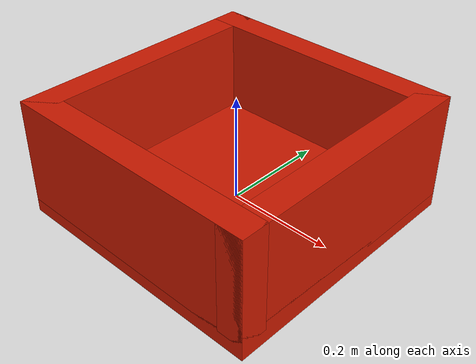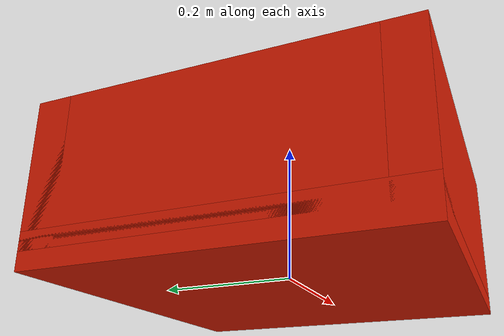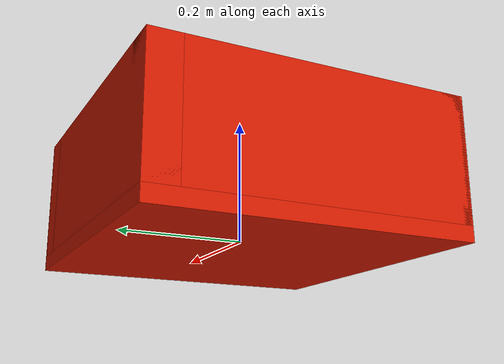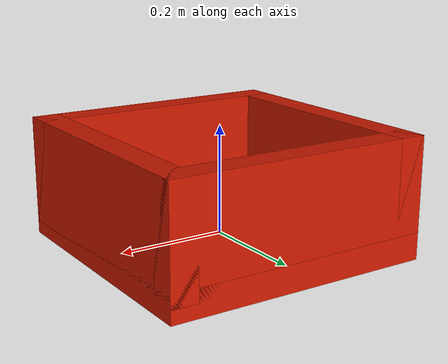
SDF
<?xml version='1.0'?>
<sdf version='1.10'>
  <model name='destination_box_open'>
    <static>true</static>
    <link name='box_link'>
      <!-- Bottom of the box -->
      <visual name='bottom'>
        <pose>0 0 0 0 0 0</pose>
        <geometry>
          <box>
            <size>0.5 0.5 0.05</size>
          </box>
        </geometry>
        <material>
          <ambient>0.6 0.1 0.0 1</ambient>
          <diffuse>0.8 0.1 0.0 1</diffuse>
          <specular>0.2 0.2 0.2 1</specular>
        </material>
      </visual>
      <collision name='bottom_collision'>
        <pose>0 0 0 0 0 0</pose>
        <geometry>
          <box>
            <size>0.5 0.5 0.05</size>
          </box>
        </geometry>
      </collision>

      <!-- Front side -->
      <visual name='front'>
        <pose>0 -0.225 0.1 0 0 0</pose>
        <geometry>
          <box>
            <size>0.5 0.05 0.2</size>
          </box>
        </geometry>
        <material>
          <ambient>0.6 0.1 0.0 1</ambient>
          <diffuse>0.8 0.1 0.0 1</diffuse>
          <specular>0.2 0.2 0.2 1</specular>
        </material>
      </visual>
      <collision name='front_collision'>
        <pose>0 -0.225 0.1 0 0 0</pose>
        <geometry>
          <box>
            <size>0.5 0.05 0.2</size>
          </box>
        </geometry>
      </collision>

      <!-- Back side -->
      <visual name='back'>
        <pose>0 0.225 0.1 0 0 0</pose>
        <geometry>
          <box>
            <size>0.5 0.05 0.2</size>
          </box>
        </geometry>
        <material>
          <ambient>0.6 0.1 0.0 1</ambient>
          <diffuse>0.8 0.1 0.0 1</diffuse>
          <specular>0.2 0.2 0.2 1</specular>
        </material>
      </visual>
      <collision name='back_collision'>
        <pose>0 0.225 0.1 0 0 0</pose>
        <geometry>
          <box>
            <size>0.5 0.05 0.2</size>
          </box>
        </geometry>
      </collision>

      <!-- Left side -->
      <visual name='left'>
        <pose>-0.225 0 0.1 0 0 0</pose>
        <geometry>
          <box>
            <size>0.05 0.5 0.2</size>
          </box>
        </geometry>
        <material>
          <ambient>0.6 0.1 0.0 1</ambient>
          <diffuse>0.8 0.1 0.0 1</diffuse>
          <specular>0.2 0.2 0.2 1</specular>
        </material>
      </visual>
      <collision name='left_collision'>
        <pose>-0.225 0 0.1 0 0 0</pose>
        <geometry>
          <box>
            <size>0.05 0.5 0.2</size>
          </box>
        </geometry>
      </collision>

      <!-- Right side -->
      <visual name='right'>
        <pose>0.225 0 0.1 0 0 0</pose>
        <geometry>
          <box>
            <size>0.05 0.5 0.2</size>
          </box>
        </geometry>
        <material>
          <ambient>0.6 0.1 0.0 1</ambient>
          <diffuse>0.8 0.1 0.0 1</diffuse>
          <specular>0.2 0.2 0.2 1</specular>
        </material>
      </visual>
      <collision name='right_collision'>
        <pose>0.225 0 0.1 0 0 0</pose>
        <geometry>
          <box>
            <size>0.05 0.5 0.2</size>
          </box>
        </geometry>
      </collision>
    </link>
  </model>
</sdf>
